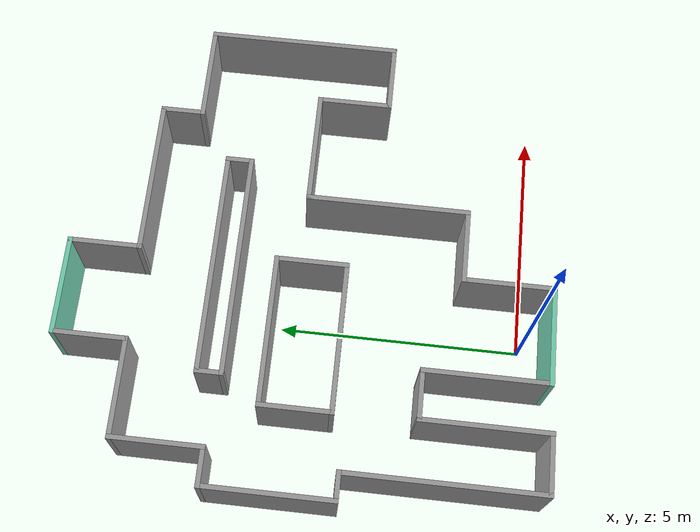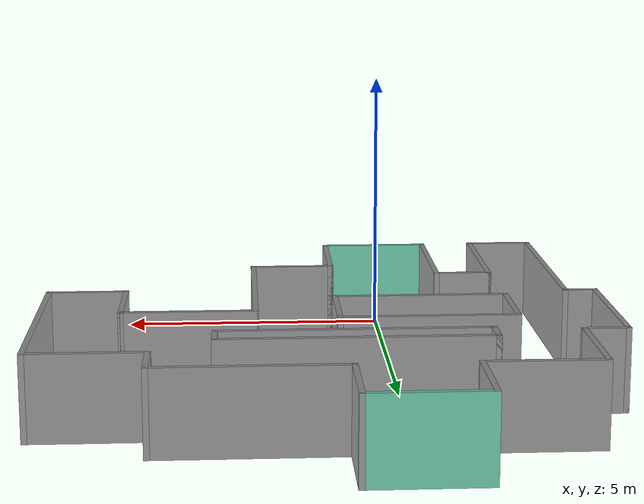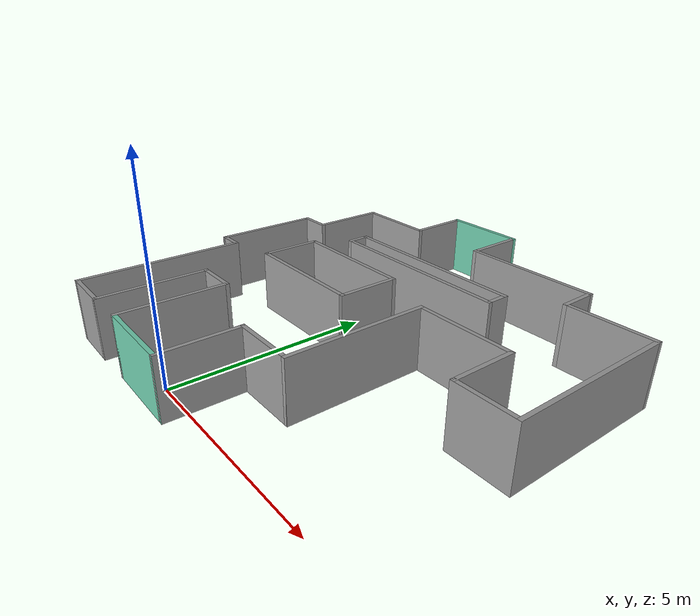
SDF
<?xml version='1.0'?>
<sdf version='1.6'>
  <model name='pizzaMap2'>
    <pose frame=''>1.25 4.475 0 0 -0 0</pose>
    <link name='Wall_0'>
      <collision name='Wall_0_Collision'>
        <geometry>
          <box>
            <size>2.1 0.1 1.5</size>
          </box>
        </geometry>
        <pose frame=''>0 0 0.75 0 -0 0</pose>
      </collision>
      <visual name='Wall_0_Visual'>
        <pose frame=''>0 0 0.75 0 -0 0</pose>
        <geometry>
          <box>
            <size>2.1 0.1 1.5</size>
          </box>
        </geometry>
        <material>
          <script>
            <uri>file://media/materials/scripts/gazebo.material</uri>
            <name>Gazebo/Grey</name>
          </script>
          <ambient>0.435294 0.796078 0.67451 1</ambient>
        </material>
        <meta>
          <layer>0</layer>
        </meta>
      </visual>
      <pose frame=''>-1.25 -4.975 0 0 -0 0</pose>
    </link>
    <link name='Wall_11'>
      <collision name='Wall_11_Collision'>
        <geometry>
          <box>
            <size>4.1 0.1 1.5</size>
          </box>
        </geometry>
        <pose frame=''>0 0 0.75 0 -0 0</pose>
      </collision>
      <visual name='Wall_11_Visual'>
        <pose frame=''>0 0 0.75 0 -0 0</pose>
        <geometry>
          <box>
            <size>4.1 0.1 1.5</size>
          </box>
        </geometry>
        <material>
          <script>
            <uri>file://media/materials/scripts/gazebo.material</uri>
            <name>Gazebo/Grey</name>
          </script>
          <ambient>1 1 1 1</ambient>
        </material>
        <meta>
          <layer>0</layer>
        </meta>
      </visual>
      <pose frame=''>5 0.725002 0 0 -0 1.5708</pose>
    </link>
    <link name='Wall_12'>
      <collision name='Wall_12_Collision'>
        <geometry>
          <box>
            <size>2.1 0.1 1.5</size>
          </box>
        </geometry>
        <pose frame=''>0 0 0.75 0 -0 0</pose>
      </collision>
      <visual name='Wall_12_Visual'>
        <pose frame=''>0 0 0.75 0 -0 0</pose>
        <geometry>
          <box>
            <size>2.1 0.1 1.5</size>
          </box>
        </geometry>
        <material>
          <script>
            <uri>file://media/materials/scripts/gazebo.material</uri>
            <name>Gazebo/Grey</name>
          </script>
          <ambient>1 1 1 1</ambient>
        </material>
        <meta>
          <layer>0</layer>
        </meta>
      </visual>
      <pose frame=''>4 2.725 0 0 -0 3.14159</pose>
    </link>
    <link name='Wall_15'>
      <collision name='Wall_15_Collision'>
        <geometry>
          <box>
            <size>0.95 0.1 1.5</size>
          </box>
        </geometry>
        <pose frame=''>0 0 0.75 0 -0 0</pose>
      </collision>
      <visual name='Wall_15_Visual'>
        <pose frame=''>0 0 0.75 0 -0 0</pose>
        <geometry>
          <box>
            <size>0.95 0.1 1.5</size>
          </box>
        </geometry>
        <material>
          <script>
            <uri>file://media/materials/scripts/gazebo.material</uri>
            <name>Gazebo/Grey</name>
          </script>
          <ambient>1 1 1 1</ambient>
        </material>
        <meta>
          <layer>0</layer>
        </meta>
      </visual>
      <pose frame=''>3 3.15 0 0 -0 1.5708</pose>
    </link>
    <link name='Wall_16'>
      <collision name='Wall_16_Collision'>
        <geometry>
          <box>
            <size>3.35 0.1 1.5</size>
          </box>
        </geometry>
        <pose frame=''>0 0 0.75 0 -0 0</pose>
      </collision>
      <visual name='Wall_16_Visual'>
        <pose frame=''>0 0 0.75 0 -0 0</pose>
        <geometry>
          <box>
            <size>3.35 0.1 1.5</size>
          </box>
        </geometry>
        <material>
          <script>
            <uri>file://media/materials/scripts/gazebo.material</uri>
            <name>Gazebo/Grey</name>
          </script>
          <ambient>1 1 1 1</ambient>
        </material>
        <meta>
          <layer>0</layer>
        </meta>
      </visual>
      <pose frame=''>1.375 3.575 0 0 -0 3.14159</pose>
    </link>
    <link name='Wall_2'>
      <collision name='Wall_2_Collision'>
        <geometry>
          <box>
            <size>1.95 0.1 1.5</size>
          </box>
        </geometry>
        <pose frame=''>0 0 0.75 0 -0 0</pose>
      </collision>
      <visual name='Wall_2_Visual'>
        <pose frame=''>0 0 0.75 0 -0 0</pose>
        <geometry>
          <box>
            <size>1.95 0.1 1.5</size>
          </box>
        </geometry>
        <material>
          <script>
            <uri>file://media/materials/scripts/gazebo.material</uri>
            <name>Gazebo/Grey</name>
          </script>
          <ambient>1 1 1 1</ambient>
        </material>
        <meta>
          <layer>0</layer>
        </meta>
      </visual>
      <pose frame=''>-0.25 -4.05 0 0 -0 1.5708</pose>
    </link>
    <link name='Wall_22'>
      <collision name='Wall_22_Collision'>
        <geometry>
          <box>
            <size>1.5503 0.1 1.5</size>
          </box>
        </geometry>
        <pose frame=''>0 0 0.75 0 -0 0</pose>
      </collision>
      <visual name='Wall_22_Visual'>
        <pose frame=''>0 0 0.75 0 -0 0</pose>
        <geometry>
          <box>
            <size>1.5503 0.1 1.5</size>
          </box>
        </geometry>
        <material>
          <script>
            <uri>file://media/materials/scripts/gazebo.material</uri>
            <name>Gazebo/Grey</name>
          </script>
          <ambient>1 1 1 1</ambient>
        </material>
        <meta>
          <layer>0</layer>
        </meta>
      </visual>
      <pose frame=''>-0.25 4.3 0 0 -0 1.5708</pose>
    </link>
    <link name='Wall_24'>
      <collision name='Wall_24_Collision'>
        <geometry>
          <box>
            <size>2.1 0.1 1.5</size>
          </box>
        </geometry>
        <pose frame=''>0 0 0.75 0 -0 0</pose>
      </collision>
      <visual name='Wall_24_Visual'>
        <pose frame=''>0 0 0.75 0 -0 0</pose>
        <geometry>
          <box>
            <size>2.1 0.1 1.5</size>
          </box>
        </geometry>
        <material>
          <script>
            <uri>file://media/materials/scripts/gazebo.material</uri>
            <name>Gazebo/Grey</name>
          </script>
          <ambient>0.435294 0.796078 0.67451 1</ambient>
        </material>
        <meta>
          <layer>0</layer>
        </meta>
      </visual>
      <pose frame=''>-1.25 5.025 0 0 -0 3.14159</pose>
    </link>
    <link name='Wall_4'>
      <collision name='Wall_4_Collision'>
        <geometry>
          <box>
            <size>1.6 0.1 1.5</size>
          </box>
        </geometry>
        <pose frame=''>0 0 0.75 0 -0 0</pose>
      </collision>
      <visual name='Wall_4_Visual'>
        <pose frame=''>0 0 0.75 0 -0 0</pose>
        <geometry>
          <box>
            <size>1.6 0.1 1.5</size>
          </box>
        </geometry>
        <material>
          <script>
            <uri>file://media/materials/scripts/gazebo.material</uri>
            <name>Gazebo/Grey</name>
          </script>
          <ambient>1 1 1 1</ambient>
        </material>
        <meta>
          <layer>0</layer>
        </meta>
      </visual>
      <pose frame=''>0.5 -3.125 0 0 -0 0</pose>
    </link>
    <link name='Wall_55'>
      <collision name='Wall_55_Collision'>
        <geometry>
          <box>
            <size>1.6 0.1 1.5</size>
          </box>
        </geometry>
        <pose frame=''>0 0 0.75 0 -0 0</pose>
      </collision>
      <visual name='Wall_55_Visual'>
        <pose frame=''>0 0 0.75 0 -0 0</pose>
        <geometry>
          <box>
            <size>1.6 0.1 1.5</size>
          </box>
        </geometry>
        <material>
          <script>
            <uri>file://media/materials/scripts/gazebo.material</uri>
            <name>Gazebo/Grey</name>
          </script>
          <ambient>1 1 1 1</ambient>
        </material>
        <meta>
          <layer>0</layer>
        </meta>
      </visual>
      <pose frame=''>-2.25 4.275 0 0 -0 -1.5708</pose>
    </link>
    <link name='Wall_57'>
      <collision name='Wall_57_Collision'>
        <geometry>
          <box>
            <size>2.65 0.1 1.5</size>
          </box>
        </geometry>
        <pose frame=''>0 0 0.75 0 -0 0</pose>
      </collision>
      <visual name='Wall_57_Visual'>
        <pose frame=''>0 0 0.75 0 -0 0</pose>
        <geometry>
          <box>
            <size>2.65 0.1 1.5</size>
          </box>
        </geometry>
        <material>
          <script>
            <uri>file://media/materials/scripts/gazebo.material</uri>
            <name>Gazebo/Grey</name>
          </script>
          <ambient>1 1 1 1</ambient>
        </material>
        <meta>
          <layer>0</layer>
        </meta>
      </visual>
      <pose frame=''>-2.25 -3.7 0 0 -0 1.5708</pose>
    </link>
    <link name='Wall_59'>
      <collision name='Wall_59_Collision'>
        <geometry>
          <box>
            <size>2.1 0.1 1.5</size>
          </box>
        </geometry>
        <pose frame=''>0 0 0.75 0 -0 0</pose>
      </collision>
      <visual name='Wall_59_Visual'>
        <pose frame=''>0 0 0.75 0 -0 0</pose>
        <geometry>
          <box>
            <size>2.1 0.1 1.5</size>
          </box>
        </geometry>
        <material>
          <script>
            <uri>file://media/materials/scripts/gazebo.material</uri>
            <name>Gazebo/Grey</name>
          </script>
          <ambient>1 1 1 1</ambient>
        </material>
        <meta>
          <layer>0</layer>
        </meta>
      </visual>
      <pose frame=''>-3.25 3.525 0 0 -0 3.14159</pose>
    </link>
    <link name='Wall_6'>
      <collision name='Wall_6_Collision'>
        <geometry>
          <box>
            <size>3.45 0.1 1.5</size>
          </box>
        </geometry>
        <pose frame=''>0 0 0.75 0 -0 0</pose>
      </collision>
      <visual name='Wall_6_Visual'>
        <pose frame=''>0 0 0.75 0 -0 0</pose>
        <geometry>
          <box>
            <size>3.45 0.1 1.5</size>
          </box>
        </geometry>
        <material>
          <script>
            <uri>file://media/materials/scripts/gazebo.material</uri>
            <name>Gazebo/Grey</name>
          </script>
          <ambient>1 1 1 1</ambient>
        </material>
        <meta>
          <layer>0</layer>
        </meta>
      </visual>
      <pose frame=''>1.25 -1.45 0 0 -0 1.5708</pose>
    </link>
    <link name='Wall_61'>
      <collision name='Wall_61_Collision'>
        <geometry>
          <box>
            <size>1.95 0.1 1.5</size>
          </box>
        </geometry>
        <pose frame=''>0 0 0.75 0 -0 0</pose>
      </collision>
      <visual name='Wall_61_Visual'>
        <pose frame=''>0 0 0.75 0 -0 0</pose>
        <geometry>
          <box>
            <size>1.95 0.1 1.5</size>
          </box>
        </geometry>
        <material>
          <script>
            <uri>file://media/materials/scripts/gazebo.material</uri>
            <name>Gazebo/Grey</name>
          </script>
          <ambient>1 1 1 1</ambient>
        </material>
        <meta>
          <layer>0</layer>
        </meta>
      </visual>
      <pose frame=''>-4.25 2.6 0 0 -0 -1.5708</pose>
    </link>
    <link name='Wall_62'>
      <collision name='Wall_62_Collision'>
        <geometry>
          <box>
            <size>0.85 0.1 1.5</size>
          </box>
        </geometry>
        <pose frame=''>0 0 0.75 0 -0 0</pose>
      </collision>
      <visual name='Wall_62_Visual'>
        <pose frame=''>0 0 0.75 0 -0 0</pose>
        <geometry>
          <box>
            <size>0.85 0.1 1.5</size>
          </box>
        </geometry>
        <material>
          <script>
            <uri>file://media/materials/scripts/gazebo.material</uri>
            <name>Gazebo/Grey</name>
          </script>
          <ambient>1 1 1 1</ambient>
        </material>
        <meta>
          <layer>0</layer>
        </meta>
      </visual>
      <pose frame=''>-4.625 1.675 0 0 -0 3.14159</pose>
    </link>
    <link name='Wall_63'>
      <collision name='Wall_63_Collision'>
        <geometry>
          <box>
            <size>2.75 0.1 1.5</size>
          </box>
        </geometry>
        <pose frame=''>0 0 0.75 0 -0 0</pose>
      </collision>
      <visual name='Wall_63_Visual'>
        <pose frame=''>0 0 0.75 0 -0 0</pose>
        <geometry>
          <box>
            <size>2.75 0.1 1.5</size>
          </box>
        </geometry>
        <material>
          <script>
            <uri>file://media/materials/scripts/gazebo.material</uri>
            <name>Gazebo/Grey</name>
          </script>
          <ambient>1 1 1 1</ambient>
        </material>
        <meta>
          <layer>0</layer>
        </meta>
      </visual>
      <pose frame=''>-5 0.350002 0 0 -0 -1.5708</pose>
    </link>
    <link name='Wall_64'>
      <collision name='Wall_64_Collision'>
        <geometry>
          <box>
            <size>0.65 0.1 1.5</size>
          </box>
        </geometry>
        <pose frame=''>0 0 0.75 0 -0 0</pose>
      </collision>
      <visual name='Wall_64_Visual'>
        <pose frame=''>0 0 0.75 0 -0 0</pose>
        <geometry>
          <box>
            <size>0.65 0.1 1.5</size>
          </box>
        </geometry>
        <material>
          <script>
            <uri>file://media/materials/scripts/gazebo.material</uri>
            <name>Gazebo/Grey</name>
          </script>
          <ambient>1 1 1 1</ambient>
        </material>
        <meta>
          <layer>0</layer>
        </meta>
      </visual>
      <pose frame=''>-4.725 -0.974998 0 0 -0 0</pose>
    </link>
    <link name='Wall_66'>
      <collision name='Wall_66_Collision'>
        <geometry>
          <box>
            <size>4.15031 0.1 1.5</size>
          </box>
        </geometry>
        <pose frame=''>0 0 0.75 0 -0 0</pose>
      </collision>
      <visual name='Wall_66_Visual'>
        <pose frame=''>0 0 0.75 0 -0 0</pose>
        <geometry>
          <box>
            <size>4.15031 0.1 1.5</size>
          </box>
        </geometry>
        <material>
          <script>
            <uri>file://media/materials/scripts/gazebo.material</uri>
            <name>Gazebo/Grey</name>
          </script>
          <ambient>1 1 1 1</ambient>
        </material>
        <meta>
          <layer>0</layer>
        </meta>
      </visual>
      <pose frame=''>-4.45 -3 0 0 -0 -1.5708</pose>
    </link>
    <link name='Wall_69'>
      <collision name='Wall_69_Collision'>
        <geometry>
          <box>
            <size>1.3 0.1 1.5</size>
          </box>
        </geometry>
        <pose frame=''>0 0 0.75 0 -0 0</pose>
      </collision>
      <visual name='Wall_69_Visual'>
        <pose frame=''>0 0 0.75 0 -0 0</pose>
        <geometry>
          <box>
            <size>1.3 0.1 1.5</size>
          </box>
        </geometry>
        <material>
          <script>
            <uri>file://media/materials/scripts/gazebo.material</uri>
            <name>Gazebo/Grey</name>
          </script>
          <ambient>1 1 1 1</ambient>
        </material>
        <meta>
          <layer>0</layer>
        </meta>
      </visual>
      <pose frame=''>-3.85 -5.025 0 0 -0 0</pose>
    </link>
    <link name='Wall_7'>
      <collision name='Wall_7_Collision'>
        <geometry>
          <box>
            <size>2.45 0.1 1.5</size>
          </box>
        </geometry>
        <pose frame=''>0 0 0.75 0 -0 0</pose>
      </collision>
      <visual name='Wall_7_Visual'>
        <pose frame=''>0 0 0.75 0 -0 0</pose>
        <geometry>
          <box>
            <size>2.45 0.1 1.5</size>
          </box>
        </geometry>
        <material>
          <script>
            <uri>file://media/materials/scripts/gazebo.material</uri>
            <name>Gazebo/Grey</name>
          </script>
          <ambient>1 1 1 1</ambient>
        </material>
        <meta>
          <layer>0</layer>
        </meta>
      </visual>
      <pose frame=''>2.425 0.225002 0 0 -0 0</pose>
    </link>
    <link name='Wall_71'>
      <collision name='Wall_71_Collision'>
        <geometry>
          <box>
            <size>2.7 0.1 1.5</size>
          </box>
        </geometry>
        <pose frame=''>0 0 0.75 0 -0 0</pose>
      </collision>
      <visual name='Wall_71_Visual'>
        <pose frame=''>0 0 0.75 0 -0 0</pose>
        <geometry>
          <box>
            <size>2.7 0.1 1.5</size>
          </box>
        </geometry>
        <material>
          <script>
            <uri>file://media/materials/scripts/gazebo.material</uri>
            <name>Gazebo/Grey</name>
          </script>
          <ambient>1 1 1 1</ambient>
        </material>
        <meta>
          <layer>0</layer>
        </meta>
      </visual>
      <pose frame=''>-3.25 -3.725 0 0 -0 1.5708</pose>
    </link>
    <link name='Wall_72'>
      <collision name='Wall_72_Collision'>
        <geometry>
          <box>
            <size>1.1 0.1 1.5</size>
          </box>
        </geometry>
        <pose frame=''>0 0 0.75 0 -0 0</pose>
      </collision>
      <visual name='Wall_72_Visual'>
        <pose frame=''>0 0 0.75 0 -0 0</pose>
        <geometry>
          <box>
            <size>1.1 0.1 1.5</size>
          </box>
        </geometry>
        <material>
          <script>
            <uri>file://media/materials/scripts/gazebo.material</uri>
            <name>Gazebo/Grey</name>
          </script>
          <ambient>1 1 1 1</ambient>
        </material>
        <meta>
          <layer>0</layer>
        </meta>
      </visual>
      <pose frame=''>-2.75 -2.425 0 0 -0 0</pose>
    </link>
    <link name='Wall_75'>
      <collision name='Wall_75_Collision'>
        <geometry>
          <box>
            <size>1.55 0.1 1.5</size>
          </box>
        </geometry>
        <pose frame=''>0 0 0.75 0 -0 0</pose>
      </collision>
      <visual name='Wall_75_Visual'>
        <pose frame=''>0 0 0.75 0 -0 0</pose>
        <geometry>
          <box>
            <size>1.55 0.1 1.5</size>
          </box>
        </geometry>
        <material>
          <script>
            <uri>file://media/materials/scripts/gazebo.material</uri>
            <name>Gazebo/Grey</name>
          </script>
          <ambient>1 1 1 1</ambient>
        </material>
        <meta>
          <layer>0</layer>
        </meta>
      </visual>
      <pose frame=''>-3.3 2e-06 0 0 -0 1.5708</pose>
    </link>
    <link name='Wall_77'>
      <collision name='Wall_77_Collision'>
        <geometry>
          <box>
            <size>3.2 0.1 1.5</size>
          </box>
        </geometry>
        <pose frame=''>0 0 0.75 0 -0 0</pose>
      </collision>
      <visual name='Wall_77_Visual'>
        <pose frame=''>0 0 0.75 0 -0 0</pose>
        <geometry>
          <box>
            <size>3.2 0.1 1.5</size>
          </box>
        </geometry>
        <material>
          <script>
            <uri>file://media/materials/scripts/gazebo.material</uri>
            <name>Gazebo/Grey</name>
          </script>
          <ambient>1 1 1 1</ambient>
        </material>
        <meta>
          <layer>0</layer>
        </meta>
      </visual>
      <pose frame=''>-1.75 -0.724998 0 0 -0 0</pose>
    </link>
    <link name='Wall_78'>
      <collision name='Wall_78_Collision'>
        <geometry>
          <box>
            <size>1.55 0.1 1.5</size>
          </box>
        </geometry>
        <pose frame=''>0 0 0.75 0 -0 0</pose>
      </collision>
      <visual name='Wall_78_Visual'>
        <pose frame=''>0 0 0.75 0 -0 0</pose>
        <geometry>
          <box>
            <size>1.55 0.1 1.5</size>
          </box>
        </geometry>
        <material>
          <script>
            <uri>file://media/materials/scripts/gazebo.material</uri>
            <name>Gazebo/Grey</name>
          </script>
          <ambient>1 1 1 1</ambient>
        </material>
        <meta>
          <layer>0</layer>
        </meta>
      </visual>
      <pose frame=''>-0.2 2e-06 0 0 -0 1.5708</pose>
    </link>
    <link name='Wall_79'>
      <collision name='Wall_79_Collision'>
        <geometry>
          <box>
            <size>3.2 0.1 1.5</size>
          </box>
        </geometry>
        <pose frame=''>0 0 0.75 0 -0 0</pose>
      </collision>
      <visual name='Wall_79_Visual'>
        <pose frame=''>0 0 0.75 0 -0 0</pose>
        <geometry>
          <box>
            <size>3.2 0.1 1.5</size>
          </box>
        </geometry>
        <material>
          <script>
            <uri>file://media/materials/scripts/gazebo.material</uri>
            <name>Gazebo/Grey</name>
          </script>
          <ambient>1 1 1 1</ambient>
        </material>
        <meta>
          <layer>0</layer>
        </meta>
      </visual>
      <pose frame=''>-1.75 0.725002 0 0 -0 3.14159</pose>
    </link>
    <link name='Wall_8'>
      <collision name='Wall_8_Collision'>
        <geometry>
          <box>
            <size>1.6 0.1 1.5</size>
          </box>
        </geometry>
        <pose frame=''>0 0 0.75 0 -0 0</pose>
      </collision>
      <visual name='Wall_8_Visual'>
        <pose frame=''>0 0 0.75 0 -0 0</pose>
        <geometry>
          <box>
            <size>1.6 0.1 1.5</size>
          </box>
        </geometry>
        <material>
          <script>
            <uri>file://media/materials/scripts/gazebo.material</uri>
            <name>Gazebo/Grey</name>
          </script>
          <ambient>1 1 1 1</ambient>
        </material>
        <meta>
          <layer>0</layer>
        </meta>
      </visual>
      <pose frame=''>3.6 -0.524998 0 0 -0 -1.5708</pose>
    </link>
    <link name='Wall_83'>
      <collision name='Wall_83_Collision'>
        <geometry>
          <box>
            <size>4.8 0.1 1.5</size>
          </box>
        </geometry>
        <pose frame=''>0 0 0.75 0 -0 0</pose>
      </collision>
      <visual name='Wall_83_Visual'>
        <pose frame=''>0 0 0.75 0 -0 0</pose>
        <geometry>
          <box>
            <size>4.8 0.1 1.5</size>
          </box>
        </geometry>
        <material>
          <script>
            <uri>file://media/materials/scripts/gazebo.material</uri>
            <name>Gazebo/Grey</name>
          </script>
          <ambient>1 1 1 1</ambient>
        </material>
        <meta>
          <layer>0</layer>
        </meta>
      </visual>
      <pose frame=''>-0.4 2.025 0 0 -0 0</pose>
    </link>
    <link name='Wall_84'>
      <collision name='Wall_84_Collision'>
        <geometry>
          <box>
            <size>0.6 0.1 1.5</size>
          </box>
        </geometry>
        <pose frame=''>0 0 0.75 0 -0 0</pose>
      </collision>
      <visual name='Wall_84_Visual'>
        <pose frame=''>0 0 0.75 0 -0 0</pose>
        <geometry>
          <box>
            <size>0.6 0.1 1.5</size>
          </box>
        </geometry>
        <material>
          <script>
            <uri>file://media/materials/scripts/gazebo.material</uri>
            <name>Gazebo/Grey</name>
          </script>
          <ambient>1 1 1 1</ambient>
        </material>
        <meta>
          <layer>0</layer>
        </meta>
      </visual>
      <pose frame=''>1.95 1.775 0 0 -0 -1.5708</pose>
    </link>
    <link name='Wall_85'>
      <collision name='Wall_85_Collision'>
        <geometry>
          <box>
            <size>4.8 0.1 1.5</size>
          </box>
        </geometry>
        <pose frame=''>0 0 0.75 0 -0 0</pose>
      </collision>
      <visual name='Wall_85_Visual'>
        <pose frame=''>0 0 0.75 0 -0 0</pose>
        <geometry>
          <box>
            <size>4.8 0.1 1.5</size>
          </box>
        </geometry>
        <material>
          <script>
            <uri>file://media/materials/scripts/gazebo.material</uri>
            <name>Gazebo/Grey</name>
          </script>
          <ambient>1 1 1 1</ambient>
        </material>
        <meta>
          <layer>0</layer>
        </meta>
      </visual>
      <pose frame=''>-0.4 1.525 0 0 -0 3.14159</pose>
    </link>
    <link name='Wall_86'>
      <collision name='Wall_86_Collision'>
        <geometry>
          <box>
            <size>0.6 0.1 1.5</size>
          </box>
        </geometry>
        <pose frame=''>0 0 0.75 0 -0 0</pose>
      </collision>
      <visual name='Wall_86_Visual'>
        <pose frame=''>0 0 0.75 0 -0 0</pose>
        <geometry>
          <box>
            <size>0.6 0.1 1.5</size>
          </box>
        </geometry>
        <material>
          <script>
            <uri>file://media/materials/scripts/gazebo.material</uri>
            <name>Gazebo/Grey</name>
          </script>
          <ambient>1 1 1 1</ambient>
        </material>
        <meta>
          <layer>0</layer>
        </meta>
      </visual>
      <pose frame=''>-2.75 1.775 0 0 -0 1.5708</pose>
    </link>
    <link name='Wall_9'>
      <collision name='Wall_9_Collision'>
        <geometry>
          <box>
            <size>1.5 0.1 1.5</size>
          </box>
        </geometry>
        <pose frame=''>0 0 0.75 0 -0 0</pose>
      </collision>
      <visual name='Wall_9_Visual'>
        <pose frame=''>0 0 0.75 0 -0 0</pose>
        <geometry>
          <box>
            <size>1.5 0.1 1.5</size>
          </box>
        </geometry>
        <material>
          <script>
            <uri>file://media/materials/scripts/gazebo.material</uri>
            <name>Gazebo/Grey</name>
          </script>
          <ambient>1 1 1 1</ambient>
        </material>
        <meta>
          <layer>0</layer>
        </meta>
      </visual>
      <pose frame=''>4.3 -1.275 0 0 -0 0</pose>
    </link>
    <static>1</static>
  </model>
</sdf>
